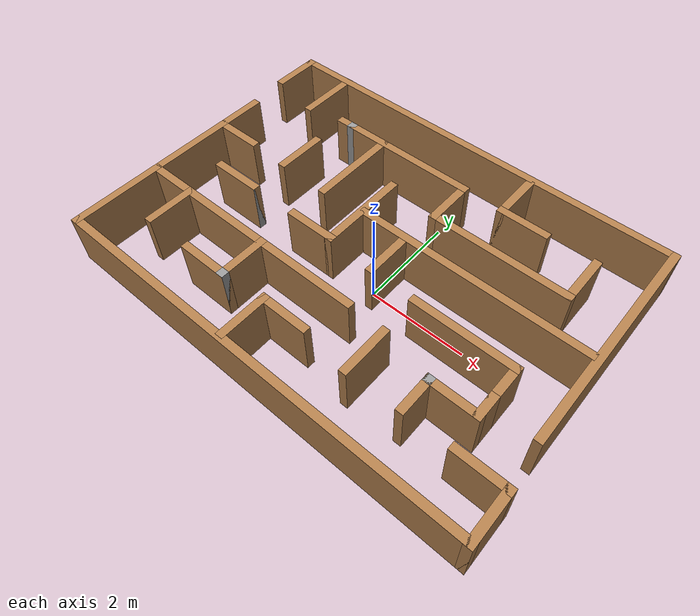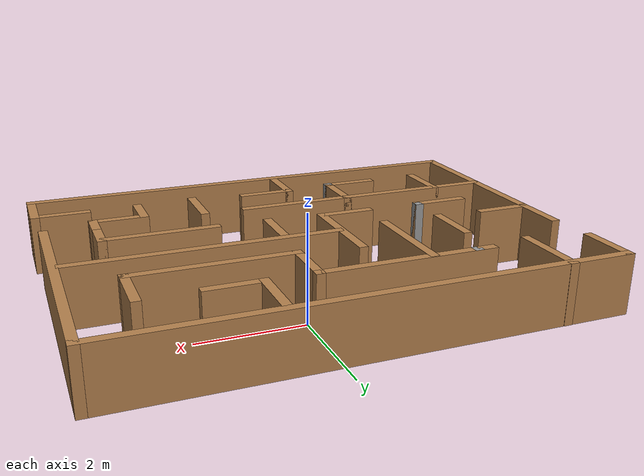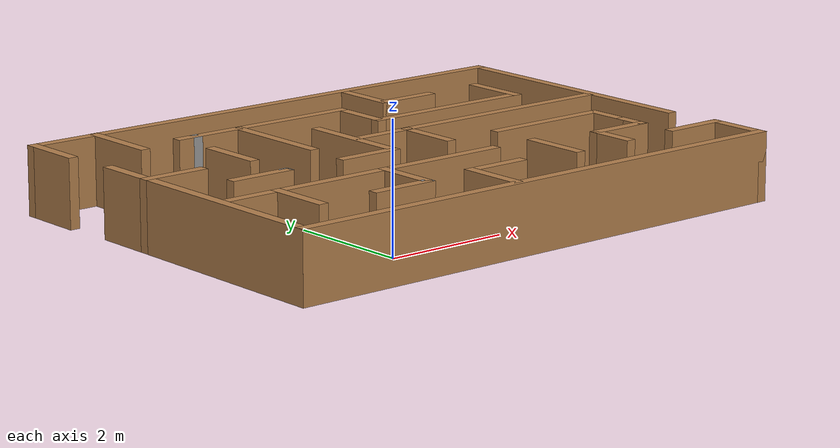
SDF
<?xml version='1.0'?>
<sdf version='1.6'>
  <model name='maze_model'>
    <pose frame=''>0.017636 -0.13939 0 0 -0 0</pose>
    <link name='Wall_14'>
      <collision name='Wall_14_Collision'>
        <geometry>
          <box>
            <size>4.25 0.15 1</size>
          </box>
        </geometry>
        <pose frame=''>0 0 1.25 0 -0 0</pose>
      </collision>
      <visual name='Wall_14_Visual'>
        <pose frame=''>0 0 1.25 0 -0 0</pose>
        <geometry>
          <box>
            <size>4.25 0.15 1</size>
          </box>
        </geometry>
        <material>
          <script>
            <uri>file://media/materials/scripts/gazebo.material</uri>
            <name>Gazebo/Wood</name>
          </script>
          <ambient>1 1 1 1</ambient>
        </material>
        <meta>
          <layer>0</layer>
        </meta>
      </visual>
      <pose frame=''>-4.01477 -0.852296 0 0 -0 -1.5708</pose>
    </link>
    <link name='Wall_15'>
      <collision name='Wall_15_Collision'>
        <geometry>
          <box>
            <size>8.25 0.15 1</size>
          </box>
        </geometry>
        <pose frame=''>0 0 1.25 0 -0 0</pose>
      </collision>
      <visual name='Wall_15_Visual'>
        <pose frame=''>0 0 1.25 0 -0 0</pose>
        <geometry>
          <box>
            <size>8.25 0.15 1</size>
          </box>
        </geometry>
        <material>
          <script>
            <uri>file://media/materials/scripts/gazebo.material</uri>
            <name>Gazebo/Wood</name>
          </script>
          <ambient>1 1 1 1</ambient>
        </material>
        <meta>
          <layer>0</layer>
        </meta>
      </visual>
      <pose frame=''>0.035234 -2.9023 0 0 -0 0</pose>
    </link>
    <link name='Wall_16'>
      <collision name='Wall_16_Collision'>
        <geometry>
          <box>
            <size>1 0.15 1</size>
          </box>
        </geometry>
        <pose frame=''>0 0 1.25 0 -0 0</pose>
      </collision>
      <visual name='Wall_16_Visual'>
        <pose frame=''>0 0 1.25 0 -0 0</pose>
        <geometry>
          <box>
            <size>1 0.15 1</size>
          </box>
        </geometry>
        <material>
          <script>
            <uri>file://media/materials/scripts/gazebo.material</uri>
            <name>Gazebo/Wood</name>
          </script>
          <ambient>1 1 1 1</ambient>
        </material>
        <meta>
          <layer>0</layer>
        </meta>
      </visual>
      <pose frame=''>4.08523 -2.4773 0 0 -0 1.5708</pose>
    </link>
    <link name='Wall_17'>
      <collision name='Wall_17_Collision'>
        <geometry>
          <box>
            <size>1 0.15 1</size>
          </box>
        </geometry>
        <pose frame=''>0 0 1.25 0 -0 0</pose>
      </collision>
      <visual name='Wall_17_Visual'>
        <pose frame=''>0 0 1.25 0 -0 0</pose>
        <geometry>
          <box>
            <size>1 0.15 1</size>
          </box>
        </geometry>
        <material>
          <script>
            <uri>file://media/materials/scripts/gazebo.material</uri>
            <name>Gazebo/Wood</name>
          </script>
          <ambient>1 1 1 1</ambient>
        </material>
        <meta>
          <layer>0</layer>
        </meta>
      </visual>
      <pose frame=''>3.66023 -2.0523 0 0 -0 3.14159</pose>
    </link>
    <link name='Wall_19'>
      <collision name='Wall_19_Collision'>
        <geometry>
          <box>
            <size>4.25 0.15 1</size>
          </box>
        </geometry>
        <pose frame=''>0 0 1.25 0 -0 0</pose>
      </collision>
      <visual name='Wall_19_Visual'>
        <pose frame=''>0 0 1.25 0 -0 0</pose>
        <geometry>
          <box>
            <size>4.25 0.15 1</size>
          </box>
        </geometry>
        <material>
          <script>
            <uri>file://media/materials/scripts/gazebo.material</uri>
            <name>Gazebo/Wood</name>
          </script>
          <ambient>1 1 1 1</ambient>
        </material>
        <meta>
          <layer>0</layer>
        </meta>
      </visual>
      <pose frame=''>4.01477 0.847816 0 0 -0 1.5708</pose>
    </link>
    <link name='Wall_20'>
      <collision name='Wall_20_Collision'>
        <geometry>
          <box>
            <size>8.25 0.15 1</size>
          </box>
        </geometry>
        <pose frame=''>0 0 1.25 0 -0 0</pose>
      </collision>
      <visual name='Wall_20_Visual'>
        <pose frame=''>0 0 1.25 0 -0 0</pose>
        <geometry>
          <box>
            <size>8.25 0.15 1</size>
          </box>
        </geometry>
        <material>
          <script>
            <uri>file://media/materials/scripts/gazebo.material</uri>
            <name>Gazebo/Wood</name>
          </script>
          <ambient>1 1 1 1</ambient>
        </material>
        <meta>
          <layer>0</layer>
        </meta>
      </visual>
      <pose frame=''>-0.035234 2.89782 0 0 -0 3.14159</pose>
    </link>
    <link name='Wall_21'>
      <collision name='Wall_21_Collision'>
        <geometry>
          <box>
            <size>1 0.15 1</size>
          </box>
        </geometry>
        <pose frame=''>0 0 1.25 0 -0 0</pose>
      </collision>
      <visual name='Wall_21_Visual'>
        <pose frame=''>0 0 1.25 0 -0 0</pose>
        <geometry>
          <box>
            <size>1 0.15 1</size>
          </box>
        </geometry>
        <material>
          <script>
            <uri>file://media/materials/scripts/gazebo.material</uri>
            <name>Gazebo/Wood</name>
          </script>
          <ambient>1 1 1 1</ambient>
        </material>
        <meta>
          <layer>0</layer>
        </meta>
      </visual>
      <pose frame=''>-4.08523 2.47282 0 0 -0 -1.5708</pose>
    </link>
    <link name='Wall_23'>
      <collision name='Wall_23_Collision'>
        <geometry>
          <box>
            <size>1.25 0.15 1</size>
          </box>
        </geometry>
        <pose frame=''>0 0 1.25 0 -0 0</pose>
      </collision>
      <visual name='Wall_23_Visual'>
        <pose frame=''>0 0 1.25 0 -0 0</pose>
        <geometry>
          <box>
            <size>1.25 0.15 1</size>
          </box>
        </geometry>
        <material>
          <script>
            <uri>file://media/materials/scripts/gazebo.material</uri>
            <name>Gazebo/Wood</name>
          </script>
          <ambient>1 1 1 1</ambient>
        </material>
        <meta>
          <layer>0</layer>
        </meta>
      </visual>
      <pose frame=''>-3.07275 2.3523 0 0 -0 -1.5708</pose>
    </link>
    <link name='Wall_25'>
      <collision name='Wall_25_Collision'>
        <geometry>
          <box>
            <size>1 0.15 1</size>
          </box>
        </geometry>
        <pose frame=''>0 0 1.25 0 -0 0</pose>
      </collision>
      <visual name='Wall_25_Visual'>
        <pose frame=''>0 0 1.25 0 -0 0</pose>
        <geometry>
          <box>
            <size>1 0.15 1</size>
          </box>
        </geometry>
        <material>
          <script>
            <uri>file://media/materials/scripts/gazebo.material</uri>
            <name>Gazebo/Wood</name>
          </script>
          <ambient>1 1 1 1</ambient>
        </material>
        <meta>
          <layer>0</layer>
        </meta>
      </visual>
      <pose frame=''>1.3233 2.36515 0 0 -0 -1.5708</pose>
    </link>
    <link name='Wall_26'>
      <collision name='Wall_26_Collision'>
        <geometry>
          <box>
            <size>1 0.15 1</size>
          </box>
        </geometry>
        <pose frame=''>0 0 1.25 0 -0 0</pose>
      </collision>
      <visual name='Wall_26_Visual'>
        <pose frame=''>0 0 1.25 0 -0 0</pose>
        <geometry>
          <box>
            <size>1 0.15 1</size>
          </box>
        </geometry>
        <material>
          <script>
            <uri>file://media/materials/scripts/gazebo.material</uri>
            <name>Gazebo/Wood</name>
          </script>
          <ambient>1 1 1 1</ambient>
        </material>
        <meta>
          <layer>0</layer>
        </meta>
      </visual>
      <pose frame=''>1.7483 1.94015 0 0 -0 0</pose>
    </link>
    <link name='Wall_28'>
      <collision name='Wall_28_Collision'>
        <geometry>
          <box>
            <size>1 0.15 1</size>
          </box>
        </geometry>
        <pose frame=''>0 0 1.25 0 -0 0</pose>
      </collision>
      <visual name='Wall_28_Visual'>
        <pose frame=''>0 0 1.25 0 -0 0</pose>
        <geometry>
          <box>
            <size>1 0.15 1</size>
          </box>
        </geometry>
        <material>
          <script>
            <uri>file://media/materials/scripts/gazebo.material</uri>
            <name>Gazebo/Wood</name>
          </script>
          <ambient>1 1 1 1</ambient>
        </material>
        <meta>
          <layer>0</layer>
        </meta>
      </visual>
      <pose frame=''>3.11761 1.51286 0 0 -0 -1.5708</pose>
    </link>
    <link name='Wall_29'>
      <collision name='Wall_29_Collision'>
        <geometry>
          <box>
            <size>2.75 0.15 1</size>
          </box>
        </geometry>
        <pose frame=''>0 0 1.25 0 -0 0</pose>
      </collision>
      <visual name='Wall_29_Visual'>
        <pose frame=''>0 0 1.25 0 -0 0</pose>
        <geometry>
          <box>
            <size>2.75 0.15 1</size>
          </box>
        </geometry>
        <material>
          <script>
            <uri>file://media/materials/scripts/gazebo.material</uri>
            <name>Gazebo/Wood</name>
          </script>
          <ambient>1 1 1 1</ambient>
        </material>
        <meta>
          <layer>0</layer>
        </meta>
      </visual>
      <pose frame=''>1.81761 1.08786 0 0 -0 3.14159</pose>
    </link>
    <link name='Wall_30'>
      <collision name='Wall_30_Collision'>
        <geometry>
          <box>
            <size>1 0.15 1</size>
          </box>
        </geometry>
        <pose frame=''>0 0 1.25 0 -0 0</pose>
      </collision>
      <visual name='Wall_30_Visual'>
        <pose frame=''>0 0 1.25 0 -0 0</pose>
        <geometry>
          <box>
            <size>1 0.15 1</size>
          </box>
        </geometry>
        <material>
          <script>
            <uri>file://media/materials/scripts/gazebo.material</uri>
            <name>Gazebo/Wood</name>
          </script>
          <ambient>1 1 1 1</ambient>
        </material>
        <meta>
          <layer>0</layer>
        </meta>
      </visual>
      <pose frame=''>0.517611 1.51286 0 0 -0 1.5708</pose>
    </link>
    <link name='Wall_32'>
      <collision name='Wall_32_Collision'>
        <geometry>
          <box>
            <size>0.15 0.15 1</size>
          </box>
        </geometry>
        <pose frame=''>0 0 1.25 0 -0 0</pose>
      </collision>
      <visual name='Wall_32_Visual'>
        <pose frame=''>0 0 1.25 0 -0 0</pose>
        <geometry>
          <box>
            <size>0.15 0.15 1</size>
          </box>
        </geometry>
        <material>
          <script>
            <uri>file://media/materials/scripts/gazebo.material</uri>
            <name>Gazebo/Grey</name>
          </script>
          <ambient>1 1 1 1</ambient>
        </material>
        <meta>
          <layer>0</layer>
        </meta>
      </visual>
      <pose frame=''>-2.08239 1.93786 0 0 -0 0</pose>
    </link>
    <link name='Wall_34'>
      <collision name='Wall_34_Collision'>
        <geometry>
          <box>
            <size>3 0.15 1</size>
          </box>
        </geometry>
        <pose frame=''>0 0 1.25 0 -0 0</pose>
      </collision>
      <visual name='Wall_34_Visual'>
        <pose frame=''>0 0 1.25 0 -0 0</pose>
        <geometry>
          <box>
            <size>3 0.15 1</size>
          </box>
        </geometry>
        <material>
          <script>
            <uri>file://media/materials/scripts/gazebo.material</uri>
            <name>Gazebo/Wood</name>
          </script>
          <ambient>1 1 1 1</ambient>
        </material>
        <meta>
          <layer>0</layer>
        </meta>
      </visual>
      <pose frame=''>-0.907389 1.93786 0 0 -0 3.14159</pose>
    </link>
    <link name='Wall_35'>
      <collision name='Wall_35_Collision'>
        <geometry>
          <box>
            <size>1 0.15 1</size>
          </box>
        </geometry>
        <pose frame=''>0 0 1.25 0 -0 0</pose>
      </collision>
      <visual name='Wall_35_Visual'>
        <pose frame=''>0 0 1.25 0 -0 0</pose>
        <geometry>
          <box>
            <size>1 0.15 1</size>
          </box>
        </geometry>
        <material>
          <script>
            <uri>file://media/materials/scripts/gazebo.material</uri>
            <name>Gazebo/Wood</name>
          </script>
          <ambient>1 1 1 1</ambient>
        </material>
        <meta>
          <layer>0</layer>
        </meta>
      </visual>
      <pose frame=''>-2.33239 0.762856 0 0 -0 -1.5708</pose>
    </link>
    <link name='Wall_36'>
      <collision name='Wall_36_Collision'>
        <geometry>
          <box>
            <size>0.15 0.15 1</size>
          </box>
        </geometry>
        <pose frame=''>0 0 1.25 0 -0 0</pose>
      </collision>
      <visual name='Wall_36_Visual'>
        <pose frame=''>0 0 1.25 0 -0 0</pose>
        <geometry>
          <box>
            <size>0.15 0.15 1</size>
          </box>
        </geometry>
        <material>
          <script>
            <uri>file://media/materials/scripts/gazebo.material</uri>
            <name>Gazebo/Grey</name>
          </script>
          <ambient>1 1 1 1</ambient>
        </material>
        <meta>
          <layer>0</layer>
        </meta>
      </visual>
      <pose frame=''>-2.33239 -0.412144 0 0 -0 0</pose>
    </link>
    <link name='Wall_37'>
      <collision name='Wall_37_Collision'>
        <geometry>
          <box>
            <size>1 0.15 1</size>
          </box>
        </geometry>
        <pose frame=''>0 0 1.25 0 -0 0</pose>
      </collision>
      <visual name='Wall_37_Visual'>
        <pose frame=''>0 0 1.25 0 -0 0</pose>
        <geometry>
          <box>
            <size>1 0.15 1</size>
          </box>
        </geometry>
        <material>
          <script>
            <uri>file://media/materials/scripts/gazebo.material</uri>
            <name>Gazebo/Wood</name>
          </script>
          <ambient>1 1 1 1</ambient>
        </material>
        <meta>
          <layer>0</layer>
        </meta>
      </visual>
      <pose frame=''>-2.75739 -0.412144 0 0 -0 3.14159</pose>
    </link>
    <link name='Wall_39'>
      <collision name='Wall_39_Collision'>
        <geometry>
          <box>
            <size>1 0.15 1</size>
          </box>
        </geometry>
        <pose frame=''>0 0 1.25 0 -0 0</pose>
      </collision>
      <visual name='Wall_39_Visual'>
        <pose frame=''>0 0 1.25 0 -0 0</pose>
        <geometry>
          <box>
            <size>1 0.15 1</size>
          </box>
        </geometry>
        <material>
          <script>
            <uri>file://media/materials/scripts/gazebo.material</uri>
            <name>Gazebo/Wood</name>
          </script>
          <ambient>1 1 1 1</ambient>
        </material>
        <meta>
          <layer>0</layer>
        </meta>
      </visual>
      <pose frame=''>-3.58977 0.367836 0 0 -0 0</pose>
    </link>
    <link name='Wall_41'>
      <collision name='Wall_41_Collision'>
        <geometry>
          <box>
            <size>4.75 0.15 1</size>
          </box>
        </geometry>
        <pose frame=''>0 0 1.25 0 -0 0</pose>
      </collision>
      <visual name='Wall_41_Visual'>
        <pose frame=''>0 0 1.25 0 -0 0</pose>
        <geometry>
          <box>
            <size>4.75 0.15 1</size>
          </box>
        </geometry>
        <material>
          <script>
            <uri>file://media/materials/scripts/gazebo.material</uri>
            <name>Gazebo/Wood</name>
          </script>
          <ambient>1 1 1 1</ambient>
        </material>
        <meta>
          <layer>0</layer>
        </meta>
      </visual>
      <pose frame=''>-1.69234 -1.22461 0 0 -0 0</pose>
    </link>
    <link name='Wall_43'>
      <collision name='Wall_43_Collision'>
        <geometry>
          <box>
            <size>1 0.15 1</size>
          </box>
        </geometry>
        <pose frame=''>0 0 1.25 0 -0 0</pose>
      </collision>
      <visual name='Wall_43_Visual'>
        <pose frame=''>0 0 1.25 0 -0 0</pose>
        <geometry>
          <box>
            <size>1 0.15 1</size>
          </box>
        </geometry>
        <material>
          <script>
            <uri>file://media/materials/scripts/gazebo.material</uri>
            <name>Gazebo/Wood</name>
          </script>
          <ambient>1 1 1 1</ambient>
        </material>
        <meta>
          <layer>0</layer>
        </meta>
      </visual>
      <pose frame=''>-1.30087 -1.64961 0 0 -0 -1.5708</pose>
    </link>
    <link name='Wall_44'>
      <collision name='Wall_44_Collision'>
        <geometry>
          <box>
            <size>0.15 0.15 1</size>
          </box>
        </geometry>
        <pose frame=''>0 0 1.25 0 -0 0</pose>
      </collision>
      <visual name='Wall_44_Visual'>
        <pose frame=''>0 0 1.25 0 -0 0</pose>
        <geometry>
          <box>
            <size>0.15 0.15 1</size>
          </box>
        </geometry>
        <material>
          <script>
            <uri>file://media/materials/scripts/gazebo.material</uri>
            <name>Gazebo/Grey</name>
          </script>
          <ambient>1 1 1 1</ambient>
        </material>
        <meta>
          <layer>0</layer>
        </meta>
      </visual>
      <pose frame=''>-1.30087 -2.07461 0 0 -0 0</pose>
    </link>
    <link name='Wall_45'>
      <collision name='Wall_45_Collision'>
        <geometry>
          <box>
            <size>1 0.15 1</size>
          </box>
        </geometry>
        <pose frame=''>0 0 1.25 0 -0 0</pose>
      </collision>
      <visual name='Wall_45_Visual'>
        <pose frame=''>0 0 1.25 0 -0 0</pose>
        <geometry>
          <box>
            <size>1 0.15 1</size>
          </box>
        </geometry>
        <material>
          <script>
            <uri>file://media/materials/scripts/gazebo.material</uri>
            <name>Gazebo/Wood</name>
          </script>
          <ambient>1 1 1 1</ambient>
        </material>
        <meta>
          <layer>0</layer>
        </meta>
      </visual>
      <pose frame=''>-1.72587 -2.07461 0 0 -0 3.14159</pose>
    </link>
    <link name='Wall_47'>
      <collision name='Wall_47_Collision'>
        <geometry>
          <box>
            <size>1 0.15 1</size>
          </box>
        </geometry>
        <pose frame=''>0 0 1.25 0 -0 0</pose>
      </collision>
      <visual name='Wall_47_Visual'>
        <pose frame=''>0 0 1.25 0 -0 0</pose>
        <geometry>
          <box>
            <size>1 0.15 1</size>
          </box>
        </geometry>
        <material>
          <script>
            <uri>file://media/materials/scripts/gazebo.material</uri>
            <name>Gazebo/Wood</name>
          </script>
          <ambient>1 1 1 1</ambient>
        </material>
        <meta>
          <layer>0</layer>
        </meta>
      </visual>
      <pose frame=''>-3.09518 -1.64961 0 0 -0 -1.5708</pose>
    </link>
    <link name='Wall_49'>
      <collision name='Wall_49_Collision'>
        <geometry>
          <box>
            <size>1.75 0.15 1</size>
          </box>
        </geometry>
        <pose frame=''>0 0 1.25 0 -0 0</pose>
      </collision>
      <visual name='Wall_49_Visual'>
        <pose frame=''>0 0 1.25 0 -0 0</pose>
        <geometry>
          <box>
            <size>1.75 0.15 1</size>
          </box>
        </geometry>
        <material>
          <script>
            <uri>file://media/materials/scripts/gazebo.material</uri>
            <name>Gazebo/Wood</name>
          </script>
          <ambient>1 1 1 1</ambient>
        </material>
        <meta>
          <layer>0</layer>
        </meta>
      </visual>
      <pose frame=''>-1.3233 1.11543 0 0 -0 -1.5708</pose>
    </link>
    <link name='Wall_51'>
      <collision name='Wall_51_Collision'>
        <geometry>
          <box>
            <size>1 0.15 1</size>
          </box>
        </geometry>
        <pose frame=''>0 0 1.25 0 -0 0</pose>
      </collision>
      <visual name='Wall_51_Visual'>
        <pose frame=''>0 0 1.25 0 -0 0</pose>
        <geometry>
          <box>
            <size>1 0.15 1</size>
          </box>
        </geometry>
        <material>
          <script>
            <uri>file://media/materials/scripts/gazebo.material</uri>
            <name>Gazebo/Wood</name>
          </script>
          <ambient>1 1 1 1</ambient>
        </material>
        <meta>
          <layer>0</layer>
        </meta>
      </visual>
      <pose frame=''>-0.448577 -2.41449 0 0 -0 1.5708</pose>
    </link>
    <link name='Wall_52'>
      <collision name='Wall_52_Collision'>
        <geometry>
          <box>
            <size>1 0.15 1</size>
          </box>
        </geometry>
        <pose frame=''>0 0 1.25 0 -0 0</pose>
      </collision>
      <visual name='Wall_52_Visual'>
        <pose frame=''>0 0 1.25 0 -0 0</pose>
        <geometry>
          <box>
            <size>1 0.15 1</size>
          </box>
        </geometry>
        <material>
          <script>
            <uri>file://media/materials/scripts/gazebo.material</uri>
            <name>Gazebo/Wood</name>
          </script>
          <ambient>1 1 1 1</ambient>
        </material>
        <meta>
          <layer>0</layer>
        </meta>
      </visual>
      <pose frame=''>-0.023577 -1.98949 0 0 -0 0</pose>
    </link>
    <link name='Wall_54'>
      <collision name='Wall_54_Collision'>
        <geometry>
          <box>
            <size>1 0.15 1</size>
          </box>
        </geometry>
        <pose frame=''>0 0 1.25 0 -0 0</pose>
      </collision>
      <visual name='Wall_54_Visual'>
        <pose frame=''>0 0 1.25 0 -0 0</pose>
        <geometry>
          <box>
            <size>1 0.15 1</size>
          </box>
        </geometry>
        <material>
          <script>
            <uri>file://media/materials/scripts/gazebo.material</uri>
            <name>Gazebo/Wood</name>
          </script>
          <ambient>1 1 1 1</ambient>
        </material>
        <meta>
          <layer>0</layer>
        </meta>
      </visual>
      <pose frame=''>-0.920731 -0.417174 0 0 -0 0</pose>
    </link>
    <link name='Wall_55'>
      <collision name='Wall_55_Collision'>
        <geometry>
          <box>
            <size>1.75 0.15 1</size>
          </box>
        </geometry>
        <pose frame=''>0 0 1.25 0 -0 0</pose>
      </collision>
      <visual name='Wall_55_Visual'>
        <pose frame=''>0 0 1.25 0 -0 0</pose>
        <geometry>
          <box>
            <size>1.75 0.15 1</size>
          </box>
        </geometry>
        <material>
          <script>
            <uri>file://media/materials/scripts/gazebo.material</uri>
            <name>Gazebo/Wood</name>
          </script>
          <ambient>1 1 1 1</ambient>
        </material>
        <meta>
          <layer>0</layer>
        </meta>
      </visual>
      <pose frame=''>-0.495732 0.382826 0 0 -0 1.5708</pose>
    </link>
    <link name='Wall_57'>
      <collision name='Wall_57_Collision'>
        <geometry>
          <box>
            <size>4.5 0.15 1</size>
          </box>
        </geometry>
        <pose frame=''>0 0 1.25 0 -0 0</pose>
      </collision>
      <visual name='Wall_57_Visual'>
        <pose frame=''>0 0 1.25 0 -0 0</pose>
        <geometry>
          <box>
            <size>4.5 0.15 1</size>
          </box>
        </geometry>
        <material>
          <script>
            <uri>file://media/materials/scripts/gazebo.material</uri>
            <name>Gazebo/Wood</name>
          </script>
          <ambient>1 1 1 1</ambient>
        </material>
        <meta>
          <layer>0</layer>
        </meta>
      </visual>
      <pose frame=''>1.72642 0.390265 0 0 -0 0</pose>
    </link>
    <link name='Wall_59'>
      <collision name='Wall_59_Collision'>
        <geometry>
          <box>
            <size>1 0.15 1</size>
          </box>
        </geometry>
        <pose frame=''>0 0 1.25 0 -0 0</pose>
      </collision>
      <visual name='Wall_59_Visual'>
        <pose frame=''>0 0 1.25 0 -0 0</pose>
        <geometry>
          <box>
            <size>1 0.15 1</size>
          </box>
        </geometry>
        <material>
          <script>
            <uri>file://media/materials/scripts/gazebo.material</uri>
            <name>Gazebo/Wood</name>
          </script>
          <ambient>1 1 1 1</ambient>
        </material>
        <meta>
          <layer>0</layer>
        </meta>
      </visual>
      <pose frame=''>0.448577 -0.057164 0 0 -0 -1.5708</pose>
    </link>
    <link name='Wall_61'>
      <collision name='Wall_61_Collision'>
        <geometry>
          <box>
            <size>1 0.15 1</size>
          </box>
        </geometry>
        <pose frame=''>0 0 1.25 0 -0 0</pose>
      </collision>
      <visual name='Wall_61_Visual'>
        <pose frame=''>0 0 1.25 0 -0 0</pose>
        <geometry>
          <box>
            <size>1 0.15 1</size>
          </box>
        </geometry>
        <material>
          <script>
            <uri>file://media/materials/scripts/gazebo.material</uri>
            <name>Gazebo/Wood</name>
          </script>
          <ambient>1 1 1 1</ambient>
        </material>
        <meta>
          <layer>0</layer>
        </meta>
      </visual>
      <pose frame=''>1.34573 -1.68692 0 0 -0 1.5708</pose>
    </link>
    <link name='Wall_62'>
      <collision name='Wall_62_Collision'>
        <geometry>
          <box>
            <size>2 0.15 1</size>
          </box>
        </geometry>
        <pose frame=''>0 0 1.25 0 -0 0</pose>
      </collision>
      <visual name='Wall_62_Visual'>
        <pose frame=''>0 0 1.25 0 -0 0</pose>
        <geometry>
          <box>
            <size>2 0.15 1</size>
          </box>
        </geometry>
        <material>
          <script>
            <uri>file://media/materials/scripts/gazebo.material</uri>
            <name>Gazebo/Wood</name>
          </script>
          <ambient>1 1 1 1</ambient>
        </material>
        <meta>
          <layer>0</layer>
        </meta>
      </visual>
      <pose frame=''>2.27073 -0.51192 0 0 -0 0</pose>
    </link>
    <link name='Wall_63'>
      <collision name='Wall_63_Collision'>
        <geometry>
          <box>
            <size>0.75 0.15 1</size>
          </box>
        </geometry>
        <pose frame=''>0 0 1.25 0 -0 0</pose>
      </collision>
      <visual name='Wall_63_Visual'>
        <pose frame=''>0 0 1.25 0 -0 0</pose>
        <geometry>
          <box>
            <size>0.75 0.15 1</size>
          </box>
        </geometry>
        <material>
          <script>
            <uri>file://media/materials/scripts/gazebo.material</uri>
            <name>Gazebo/Wood</name>
          </script>
          <ambient>1 1 1 1</ambient>
        </material>
        <meta>
          <layer>0</layer>
        </meta>
      </visual>
      <pose frame=''>3.19573 -0.81192 0 0 -0 -1.5708</pose>
    </link>
    <link name='Wall_64'>
      <collision name='Wall_64_Collision'>
        <geometry>
          <box>
            <size>0.5 0.15 1</size>
          </box>
        </geometry>
        <pose frame=''>0 0 1.25 0 -0 0</pose>
      </collision>
      <visual name='Wall_64_Visual'>
        <pose frame=''>0 0 1.25 0 -0 0</pose>
        <geometry>
          <box>
            <size>0.5 0.15 1</size>
          </box>
        </geometry>
        <material>
          <script>
            <uri>file://media/materials/scripts/gazebo.material</uri>
            <name>Gazebo/Wood</name>
          </script>
          <ambient>1 1 1 1</ambient>
        </material>
        <meta>
          <layer>0</layer>
        </meta>
      </visual>
      <pose frame=''>3.19573 -1.28692 0 0 -0 -1.5708</pose>
    </link>
    <link name='Wall_65'>
      <collision name='Wall_65_Collision'>
        <geometry>
          <box>
            <size>1 0.15 1</size>
          </box>
        </geometry>
        <pose frame=''>0 0 1.25 0 -0 0</pose>
      </collision>
      <visual name='Wall_65_Visual'>
        <pose frame=''>0 0 1.25 0 -0 0</pose>
        <geometry>
          <box>
            <size>1 0.15 1</size>
          </box>
        </geometry>
        <material>
          <script>
            <uri>file://media/materials/scripts/gazebo.material</uri>
            <name>Gazebo/Wood</name>
          </script>
          <ambient>1 1 1 1</ambient>
        </material>
        <meta>
          <layer>0</layer>
        </meta>
      </visual>
      <pose frame=''>2.77073 -1.46192 0 0 -0 3.14159</pose>
    </link>
    <link name='Wall_66'>
      <collision name='Wall_66_Collision'>
        <geometry>
          <box>
            <size>0.15 0.15 1</size>
          </box>
        </geometry>
        <pose frame=''>0 0 1.25 0 -0 0</pose>
      </collision>
      <visual name='Wall_66_Visual'>
        <pose frame=''>0 0 1.25 0 -0 0</pose>
        <geometry>
          <box>
            <size>0.15 0.15 1</size>
          </box>
        </geometry>
        <material>
          <script>
            <uri>file://media/materials/scripts/gazebo.material</uri>
            <name>Gazebo/Grey</name>
          </script>
          <ambient>1 1 1 1</ambient>
        </material>
        <meta>
          <layer>0</layer>
        </meta>
      </visual>
      <pose frame=''>2.34573 -1.46192 0 0 -0 0</pose>
    </link>
    <link name='Wall_67'>
      <collision name='Wall_67_Collision'>
        <geometry>
          <box>
            <size>0.75 0.15 1</size>
          </box>
        </geometry>
        <pose frame=''>0 0 1.25 0 -0 0</pose>
      </collision>
      <visual name='Wall_67_Visual'>
        <pose frame=''>0 0 1.25 0 -0 0</pose>
        <geometry>
          <box>
            <size>0.75 0.15 1</size>
          </box>
        </geometry>
        <material>
          <script>
            <uri>file://media/materials/scripts/gazebo.material</uri>
            <name>Gazebo/Wood</name>
          </script>
          <ambient>1 1 1 1</ambient>
        </material>
        <meta>
          <layer>0</layer>
        </meta>
      </visual>
      <pose frame=''>2.34573 -1.76192 0 0 -0 -1.5708</pose>
    </link>
    <static>1</static>
  </model>
</sdf>
